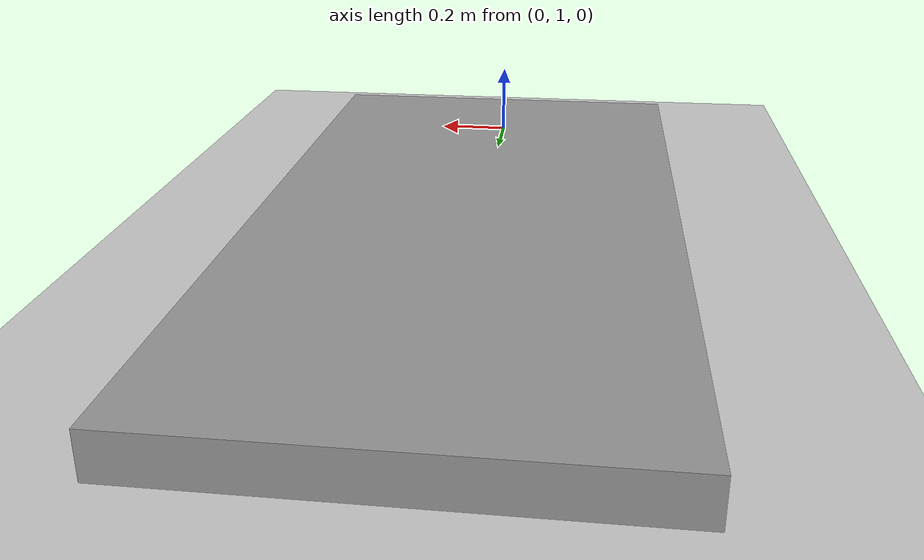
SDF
<sdf version='1.7'>
  <world name='default'>

    <light name='mySun' type='directional'>
      <cast_shadows>1</cast_shadows>
      <pose>0 0 10 0 0 0</pose>
      <diffuse>0.8 0.8 0.8 1</diffuse>
      <specular>0.2 0.2 0.2 1</specular>
      <attenuation>
        <range>1000</range>
        <constant>0.9</constant>
        <linear>0.01</linear>
        <quadratic>0.001</quadratic>
      </attenuation>
      <direction>-0.5 0.1 -0.9</direction>
    </light>

    <model name='myGround'>
      <static>1</static>
      <link name='link'>
        <pose>0 0 0 0 0 0</pose>
        <visual name='visual'>
          <pose>0 0 0 0 0 0</pose>
          <geometry>
            <plane>
              <normal>0 0 1</normal>
              <size>100 100</size>
            </plane>
          </geometry>
          <material>
            <script>
              <uri>file://media/materials/scripts/gazebo.material</uri>
              <name>Gazebo/CloudySky</name>
            </script>
          </material>
        </visual>
        <collision name='ground_collision'>
          <pose>0 0 0 0 0 0</pose>
          <geometry>
            <plane>
              <normal>0 0 1</normal>
              <size>100 100</size>
            </plane>
          </geometry>
          <surface>
            <friction>
              <ode>
                <mu>0.9</mu>
                <mu2>0.9</mu2>
                <fdir1>0 0 0</fdir1>
              </ode>
            </friction>
            <contact>
              <ode>
                <kp>1e+13</kp>
                <kd>1</kd>
                <max_vel>0.01</max_vel>
              </ode>
            </contact>
            <bounce>
              <restitution_coefficient>0.0</restitution_coefficient>
              <threshold>1</threshold>
            </bounce>
          </surface>
        </collision>
      </link>
    </model>

    <model name='myBox1'>
      <static>1</static>
      <link name='link'>
        <pose>0.0 2.0 0.05 0.0 0.0 0.0</pose>
        <visual name='visual'>
          <pose>0 0 0 0 0 0</pose>
          <geometry>
            <box>
              <size>1.0 2.0 0.1</size>
            </box>
          </geometry>
          <material>
            <script>
              <name>Gazebo/Gray</name>
              <uri>file://media/materials/scripts/gazebo.material</uri>
            </script>
          </material>
        </visual>
        <collision name='box_collision'>
          <pose>0 0 0 0 0 0</pose>
          <geometry>
            <box>
              <size>1.0 2.0 0.1</size>
            </box>
          </geometry>
          <surface>
            <friction>
              <ode>
                <mu>0.9</mu>
                <mu2>0.9</mu2>
                <fdir1>0 0 0</fdir1>
              </ode>
            </friction>
            <contact>
              <ode>
                <kp>1e+13</kp>
                <kd>1</kd>
                <max_vel>0.01</max_vel>
              </ode>
            </contact>
            <bounce>
              <restitution_coefficient>0.0</restitution_coefficient>
              <threshold>1</threshold>
            </bounce>
          </surface>
        </collision>
      </link>
    </model>

    <gravity>0 0 -9.8</gravity>

    <physics name='myPhysics' default='0' type='ode'>
      <max_step_size>0.001</max_step_size>
      <real_time_factor>1</real_time_factor>
      <real_time_update_rate>1000</real_time_update_rate>
    </physics>

    <gui fullscreen='0'>
      <camera name='myCamera'>
        <pose>4.47509 -2.94435 4.02578 -0 0.619262 2.45387</pose>
        <view_controller>orbit</view_controller>
        <projection_type>perspective</projection_type>
      </camera>
    </gui>

  </world>
</sdf>
